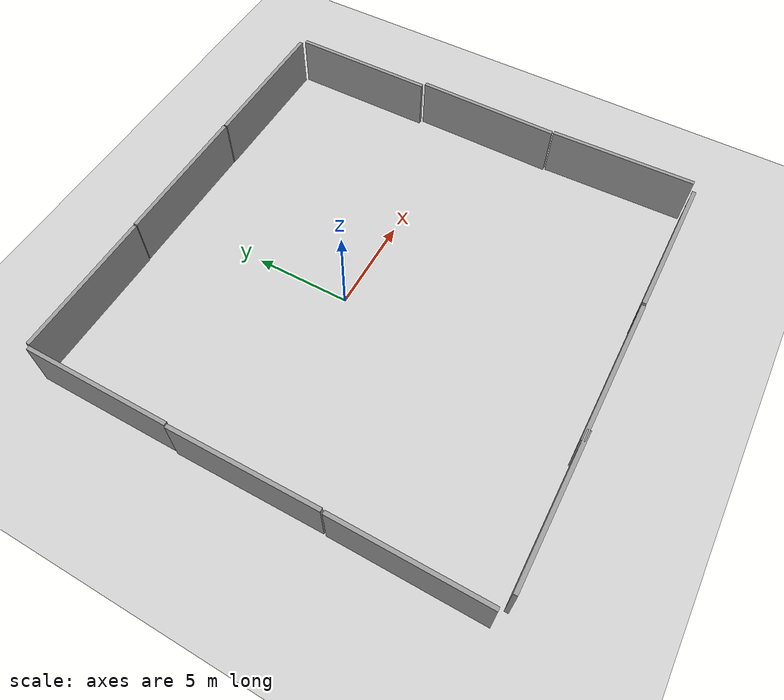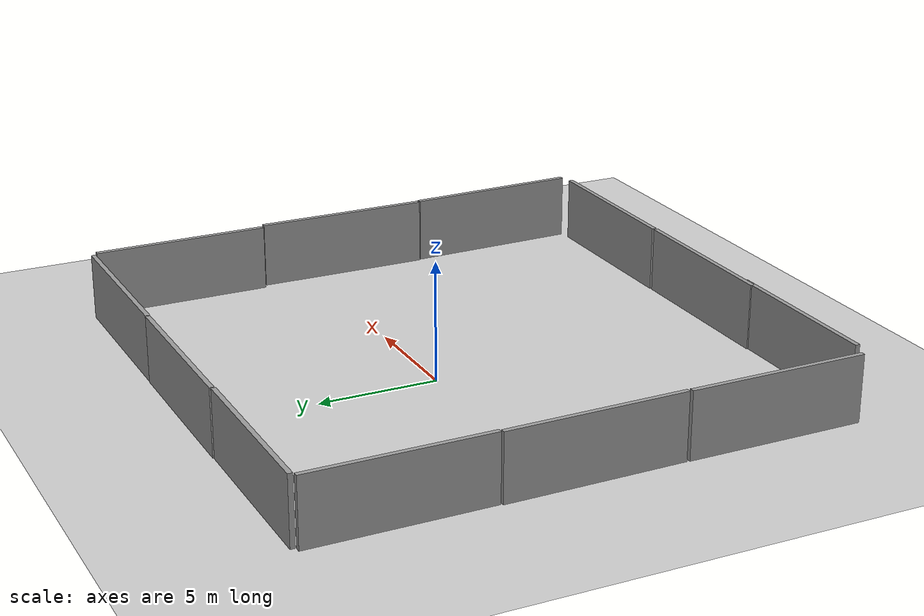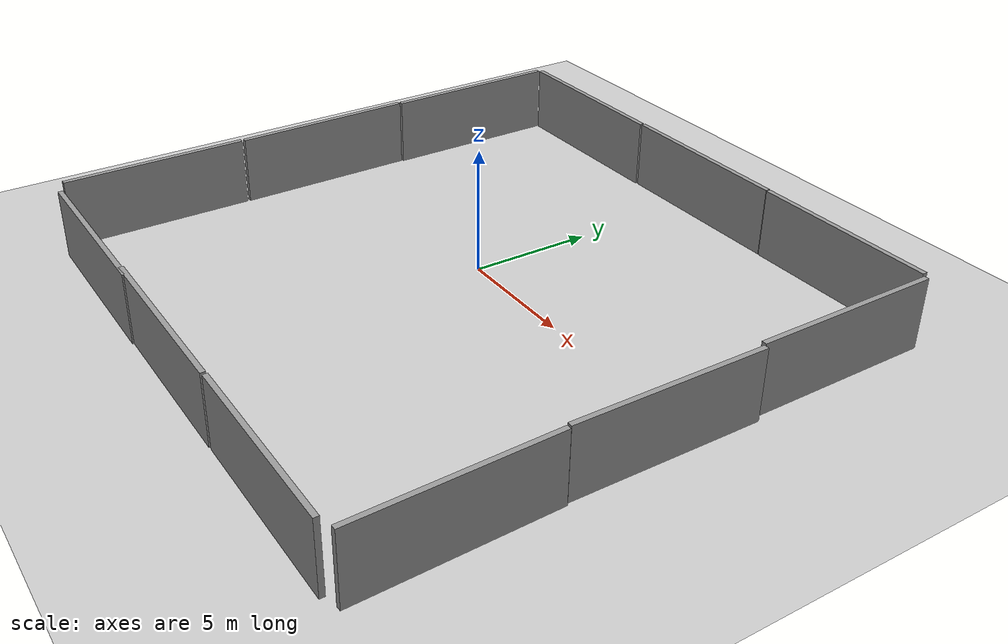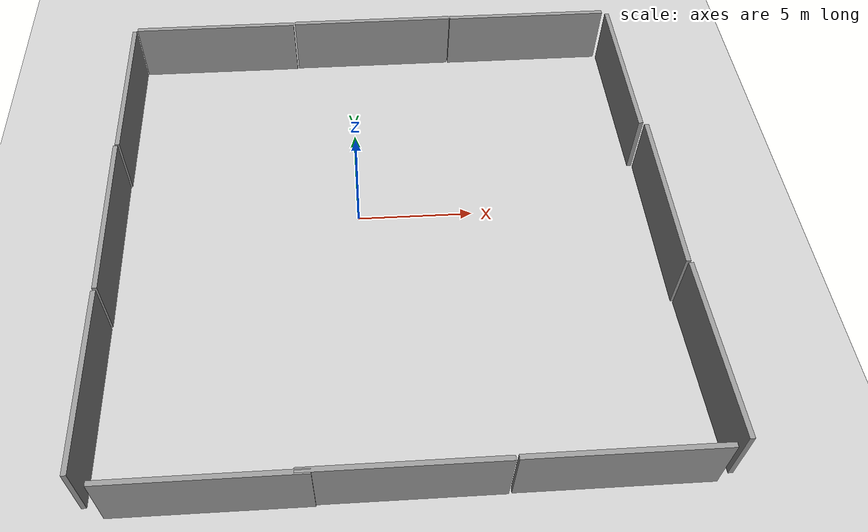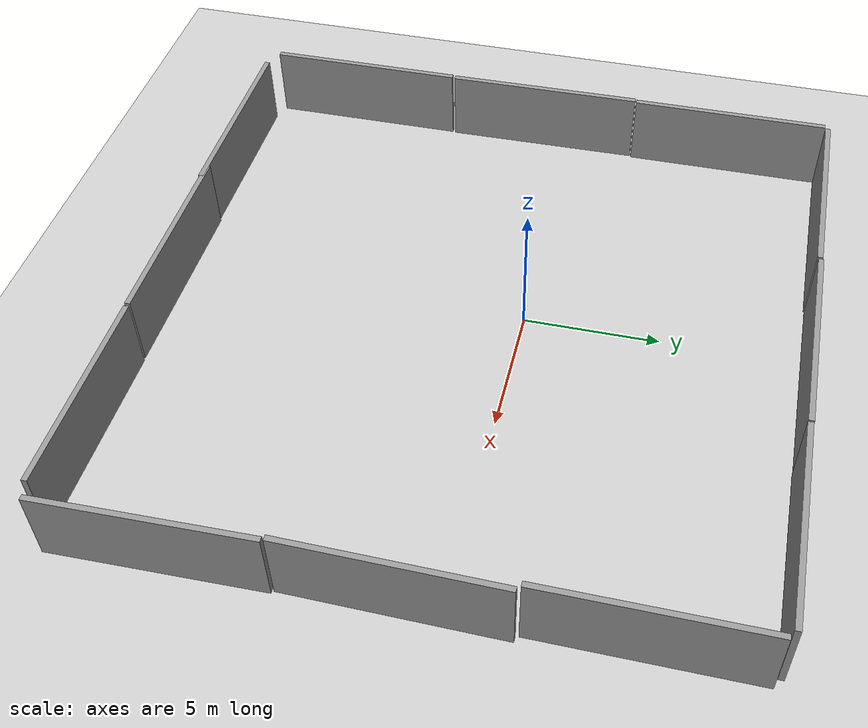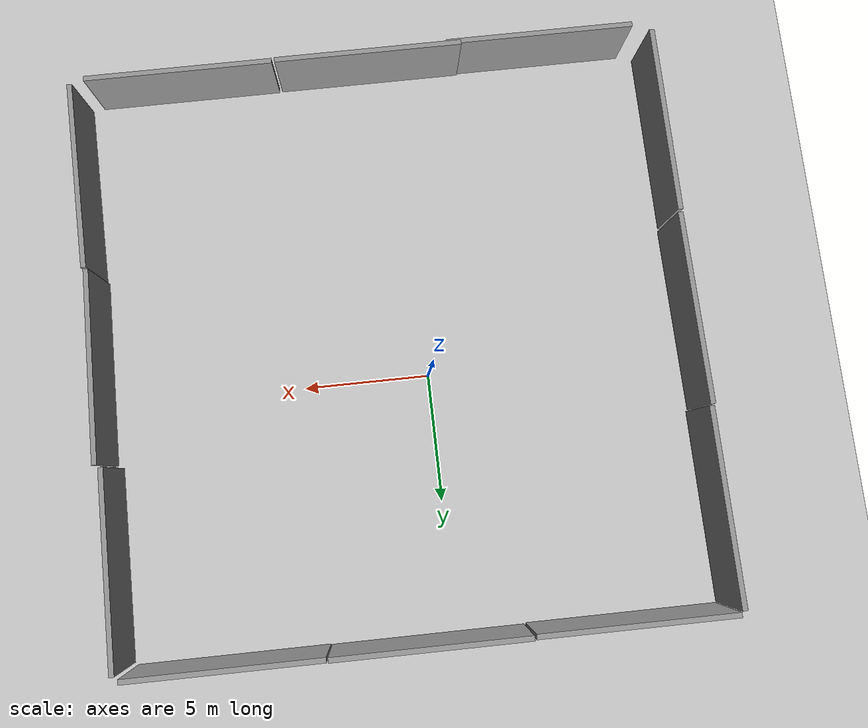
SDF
<sdf version="1.7">
 <world name="default">
  <light name="sun" type="directional">
   <pose>0 0 10 0 -0 0</pose>
   <diffuse>0.8 0.8 0.8 1</diffuse>
   <specular>0.2 0.2 0.2 1</specular>
   <attenuation>
    <range>1000</range>
    <constant>0.9</constant>
    <linear>0.01</linear>
    <quadratic>0.001</quadratic>
   </attenuation>
   <direction>-0.5 0.1 -0.9</direction>
   <spot><inner_angle>0</inner_angle><outer_angle>0</outer_angle><falloff>0</falloff></spot>
  </light>
  <model name="ground_plane">
   <static>1</static>
   <link name="link">
    <collision name="collision">
     <geometry><plane><normal>0 0 1</normal><size>100 100</size></plane></geometry>
     <surface><friction><ode><mu>100</mu><mu2>50</mu2></ode></friction></surface>
    </collision>
    <visual name="visual">
     <cast_shadows>0</cast_shadows>
     <geometry><plane><normal>0 0 1</normal><size>100 100</size></plane></geometry>
     <material>
      <script><uri>file://media/materials/scripts/gazebo.material</uri><name>Gazebo/Grey</name></script>
     </material>
    </visual>
   </link>
  </model>
  <gravity>0 0 -9.8</gravity>
  <magnetic_field>6e-06 2.3e-05 -4.2e-05</magnetic_field>
  <atmosphere type="adiabatic"/>
  <physics type="ode">
   <max_step_size>0.001</max_step_size>
   <real_time_factor>1</real_time_factor>
   <real_time_update_rate>1000</real_time_update_rate>
  </physics>
  <scene><ambient>0.4 0.4 0.4 1</ambient><background>0.7 0.7 0.7 1</background><shadows>1</shadows></scene>
  <spherical_coordinates>
   <surface_model>EARTH_WGS84</surface_model>
   <latitude_deg>0</latitude_deg>
   <longitude_deg>0</longitude_deg>
   <elevation>0</elevation>
   <heading_deg>0</heading_deg>
  </spherical_coordinates>
  <model name="grey_wall">
   <static>1</static>
   <link name="link">
    <pose>0 0 1.4 0 -0 0</pose>
    <collision name="collision"><geometry><box><size>7.5 0.2 2.8</size></box></geometry></collision>
    <visual name="visual">
     <cast_shadows>0</cast_shadows>
     <geometry><box><size>7.5 0.2 2.8</size></box></geometry>
     <material>
      <script>
       <uri>model://grey_wall/materials/scripts</uri>
       <uri>model://grey_wall/materials/textures</uri>
       <name>vrc/grey_wall</name>
      </script>
     </material>
    </visual>
   </link>
   <pose>-6.47444 10.099 0 0 -0 0</pose>
  </model>
  <model name="grey_wall_0">
   <static>1</static>
   <link name="link">
    <pose>0 0 1.4 0 -0 0</pose>
    <collision name="collision"><geometry><box><size>7.5 0.2 2.8</size></box></geometry></collision>
    <visual name="visual">
     <cast_shadows>0</cast_shadows>
     <geometry><box><size>7.5 0.2 2.8</size></box></geometry>
     <material>
      <script>
       <uri>model://grey_wall/materials/scripts</uri>
       <uri>model://grey_wall/materials/textures</uri>
       <name>vrc/grey_wall</name>
      </script>
     </material>
    </visual>
   </link>
   <pose>1.09604 10.1339 0 0 -0 0</pose>
  </model>
  <model name="grey_wall_1">
   <static>1</static>
   <link name="link">
    <pose>0 0 1.4 0 -0 0</pose>
    <collision name="collision"><geometry><box><size>7.5 0.2 2.8</size></box></geometry></collision>
    <visual name="visual">
     <cast_shadows>0</cast_shadows>
     <geometry><box><size>7.5 0.2 2.8</size></box></geometry>
     <material>
      <script>
       <uri>model://grey_wall/materials/scripts</uri>
       <uri>model://grey_wall/materials/textures</uri>
       <name>vrc/grey_wall</name>
      </script>
     </material>
    </visual>
   </link>
   <pose>8.64836 10.1148 0 0 -0 0</pose>
  </model>
  <model name="grey_wall_2">
   <static>1</static>
   <link name="link">
    <pose>0 0 1.4 0 -0 0</pose>
    <collision name="collision"><geometry><box><size>7.5 0.2 2.8</size></box></geometry></collision>
    <visual name="visual">
     <cast_shadows>0</cast_shadows>
     <geometry><box><size>7.5 0.2 2.8</size></box></geometry>
     <material>
      <script>
       <uri>model://grey_wall/materials/scripts</uri>
       <uri>model://grey_wall/materials/textures</uri>
       <name>vrc/grey_wall</name>
      </script>
     </material>
    </visual>
   </link>
   <pose>12.6245 6.17654 0 0 0 -1.56952</pose>
  </model>
  <model name="grey_wall_3">
   <static>1</static>
   <link name="link">
    <pose>0 0 1.4 0 -0 0</pose>
    <collision name="collision"><geometry><box><size>7.5 0.2 2.8</size></box></geometry></collision>
    <visual name="visual">
     <cast_shadows>0</cast_shadows>
     <geometry><box><size>7.5 0.2 2.8</size></box></geometry>
     <material>
      <script>
       <uri>model://grey_wall/materials/scripts</uri>
       <uri>model://grey_wall/materials/textures</uri>
       <name>vrc/grey_wall</name>
      </script>
     </material>
    </visual>
   </link>
   <pose>12.8221 -1.42557 0.00556 0 0 -1.57791</pose>
  </model>
  <model name="grey_wall_4">
   <static>1</static>
   <link name="link">
    <pose>0 0 1.4 0 -0 0</pose>
    <collision name="collision"><geometry><box><size>7.5 0.2 2.8</size></box></geometry></collision>
    <visual name="visual">
     <cast_shadows>0</cast_shadows>
     <geometry><box><size>7.5 0.2 2.8</size></box></geometry>
     <material>
      <script>
       <uri>model://grey_wall/materials/scripts</uri>
       <uri>model://grey_wall/materials/textures</uri>
       <name>vrc/grey_wall</name>
      </script>
     </material>
    </visual>
   </link>
   <pose>12.9698 -8.99442 0 0 0 -1.54552</pose>
  </model>
  <model name="grey_wall_5">
   <static>1</static>
   <link name="link">
    <pose>0 0 1.4 0 -0 0</pose>
    <collision name="collision"><geometry><box><size>7.5 0.2 2.8</size></box></geometry></collision>
    <visual name="visual">
     <cast_shadows>0</cast_shadows>
     <geometry><box><size>7.5 0.2 2.8</size></box></geometry>
     <material>
      <script>
       <uri>model://grey_wall/materials/scripts</uri>
       <uri>model://grey_wall/materials/textures</uri>
       <name>vrc/grey_wall</name>
      </script>
     </material>
    </visual>
   </link>
   <pose>8.74099 -12.9296 0 0 -0 0</pose>
  </model>
  <model name="grey_wall_6">
   <static>1</static>
   <link name="link">
    <pose>0 0 1.4 0 -0 0</pose>
    <collision name="collision"><geometry><box><size>7.5 0.2 2.8</size></box></geometry></collision>
    <visual name="visual">
     <cast_shadows>0</cast_shadows>
     <geometry><box><size>7.5 0.2 2.8</size></box></geometry>
     <material>
      <script>
       <uri>model://grey_wall/materials/scripts</uri>
       <uri>model://grey_wall/materials/textures</uri>
       <name>vrc/grey_wall</name>
      </script>
     </material>
    </visual>
   </link>
   <pose>1.12668 -12.9488 0 0 -0 0</pose>
  </model>
  <model name="grey_wall_7">
   <static>1</static>
   <link name="link">
    <pose>0 0 1.4 0 -0 0</pose>
    <collision name="collision"><geometry><box><size>7.5 0.2 2.8</size></box></geometry></collision>
    <visual name="visual">
     <cast_shadows>0</cast_shadows>
     <geometry><box><size>7.5 0.2 2.8</size></box></geometry>
     <material>
      <script>
       <uri>model://grey_wall/materials/scripts</uri>
       <uri>model://grey_wall/materials/textures</uri>
       <name>vrc/grey_wall</name>
      </script>
     </material>
    </visual>
   </link>
   <pose>-5.7915 -13.0046 0 0 -0 0</pose>
  </model>
  <model name="grey_wall_8">
   <static>1</static>
   <link name="link">
    <pose>0 0 1.4 0 -0 0</pose>
    <collision name="collision"><geometry><box><size>7.5 0.2 2.8</size></box></geometry></collision>
    <visual name="visual">
     <cast_shadows>0</cast_shadows>
     <geometry><box><size>7.5 0.2 2.8</size></box></geometry>
     <material>
      <script>
       <uri>model://grey_wall/materials/scripts</uri>
       <uri>model://grey_wall/materials/textures</uri>
       <name>vrc/grey_wall</name>
      </script>
     </material>
    </visual>
   </link>
   <pose>-10.3399 6.22647 0 0 0 -1.56612</pose>
  </model>
  <model name="grey_wall_9">
   <static>1</static>
   <link name="link">
    <pose>0 0 1.4 0 -0 0</pose>
    <collision name="collision"><geometry><box><size>7.5 0.2 2.8</size></box></geometry></collision>
    <visual name="visual">
     <cast_shadows>0</cast_shadows>
     <geometry><box><size>7.5 0.2 2.8</size></box></geometry>
     <material>
      <script>
       <uri>model://grey_wall/materials/scripts</uri>
       <uri>model://grey_wall/materials/textures</uri>
       <name>vrc/grey_wall</name>
      </script>
     </material>
    </visual>
   </link>
   <pose>-10.3381 -1.32829 0 0 0 -1.55808</pose>
  </model>
  <model name="grey_wall_10">
   <static>1</static>
   <link name="link">
    <pose>0 0 1.4 0 -0 0</pose>
    <collision name="collision"><geometry><box><size>7.5 0.2 2.8</size></box></geometry></collision>
    <visual name="visual">
     <cast_shadows>0</cast_shadows>
     <geometry><box><size>7.5 0.2 2.8</size></box></geometry>
     <material>
      <script>
       <uri>model://grey_wall/materials/scripts</uri>
       <uri>model://grey_wall/materials/textures</uri>
       <name>vrc/grey_wall</name>
      </script>
     </material>
    </visual>
   </link>
   <pose>-10.3053 -8.93921 0 0 0 -1.56721</pose>
  </model>
 </world>
</sdf>
